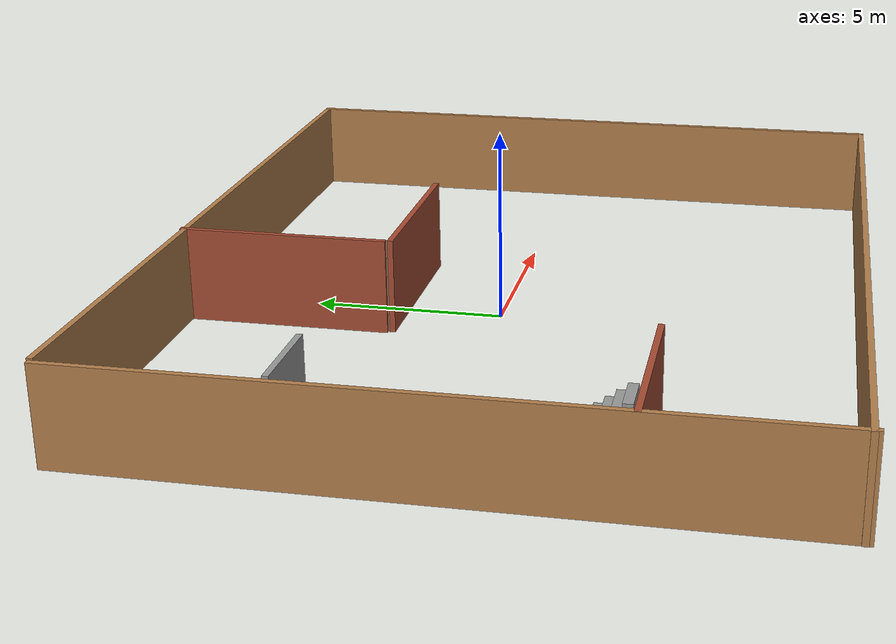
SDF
<?xml version='1.0'?>
<sdf version='1.7'>
  <model name='house'>
    <pose>0.312578 -0.662626 0 0 -0 0</pose>
    <link name='Stairs_0'>
      <visual name='Stairs_0_Visual_0'>
        <pose>-9.78686 -0.646213 0.083333 0 -0 0</pose>
        <geometry>
          <box>
            <size>1 0.233333 0.166667</size>
          </box>
        </geometry>
        <material>
          <script>
            <uri>file://media/materials/scripts/gazebo.material</uri>
            <name>Gazebo/Grey</name>
          </script>
          <ambient>1 1 1 1</ambient>
        </material>
        <meta>
          <layer>0</layer>
        </meta>
      </visual>
      <collision name='Stairs_0_Collision_0'>
        <geometry>
          <box>
            <size>1 0.233333 0.166667</size>
          </box>
        </geometry>
        <pose>-9.78686 -0.646213 0.083333 0 -0 0</pose>
      </collision>
      <visual name='Stairs_0_Visual_1'>
        <pose>-9.78686 -0.879547 0.25 0 -0 0</pose>
        <geometry>
          <box>
            <size>1 0.233333 0.166667</size>
          </box>
        </geometry>
        <material>
          <script>
            <uri>file://media/materials/scripts/gazebo.material</uri>
            <name>Gazebo/Grey</name>
          </script>
          <ambient>1 1 1 1</ambient>
        </material>
        <meta>
          <layer>0</layer>
        </meta>
      </visual>
      <collision name='Stairs_0_Collision_1'>
        <geometry>
          <box>
            <size>1 0.233333 0.166667</size>
          </box>
        </geometry>
        <pose>-9.78686 -0.879547 0.25 0 -0 0</pose>
      </collision>
      <visual name='Stairs_0_Visual_2'>
        <pose>-9.78686 -1.11288 0.416667 0 -0 0</pose>
        <geometry>
          <box>
            <size>1 0.233333 0.166667</size>
          </box>
        </geometry>
        <material>
          <script>
            <uri>file://media/materials/scripts/gazebo.material</uri>
            <name>Gazebo/Grey</name>
          </script>
          <ambient>1 1 1 1</ambient>
        </material>
        <meta>
          <layer>0</layer>
        </meta>
      </visual>
      <collision name='Stairs_0_Collision_2'>
        <geometry>
          <box>
            <size>1 0.233333 0.166667</size>
          </box>
        </geometry>
        <pose>-9.78686 -1.11288 0.416667 0 -0 0</pose>
      </collision>
      <visual name='Stairs_0_Visual_3'>
        <pose>-9.78686 -1.34621 0.583333 0 -0 0</pose>
        <geometry>
          <box>
            <size>1 0.233333 0.166667</size>
          </box>
        </geometry>
        <material>
          <script>
            <uri>file://media/materials/scripts/gazebo.material</uri>
            <name>Gazebo/Grey</name>
          </script>
          <ambient>1 1 1 1</ambient>
        </material>
        <meta>
          <layer>0</layer>
        </meta>
      </visual>
      <collision name='Stairs_0_Collision_3'>
        <geometry>
          <box>
            <size>1 0.233333 0.166667</size>
          </box>
        </geometry>
        <pose>-9.78686 -1.34621 0.583333 0 -0 0</pose>
      </collision>
      <visual name='Stairs_0_Visual_4'>
        <pose>-9.78686 -1.57955 0.75 0 -0 0</pose>
        <geometry>
          <box>
            <size>1 0.233333 0.166667</size>
          </box>
        </geometry>
        <material>
          <script>
            <uri>file://media/materials/scripts/gazebo.material</uri>
            <name>Gazebo/Grey</name>
          </script>
          <ambient>1 1 1 1</ambient>
        </material>
        <meta>
          <layer>0</layer>
        </meta>
      </visual>
      <collision name='Stairs_0_Collision_4'>
        <geometry>
          <box>
            <size>1 0.233333 0.166667</size>
          </box>
        </geometry>
        <pose>-9.78686 -1.57955 0.75 0 -0 0</pose>
      </collision>
      <visual name='Stairs_0_Visual_5'>
        <pose>-9.78686 -1.81288 0.916667 0 -0 0</pose>
        <geometry>
          <box>
            <size>1 0.233333 0.166667</size>
          </box>
        </geometry>
        <material>
          <script>
            <uri>file://media/materials/scripts/gazebo.material</uri>
            <name>Gazebo/Grey</name>
          </script>
          <ambient>1 1 1 1</ambient>
        </material>
        <meta>
          <layer>0</layer>
        </meta>
      </visual>
      <collision name='Stairs_0_Collision_5'>
        <geometry>
          <box>
            <size>1 0.233333 0.166667</size>
          </box>
        </geometry>
        <pose>-9.78686 -1.81288 0.916667 0 -0 0</pose>
      </collision>
      <visual name='Stairs_0_Visual_6'>
        <pose>-9.78686 -2.04621 1.08333 0 -0 0</pose>
        <geometry>
          <box>
            <size>1 0.233333 0.166667</size>
          </box>
        </geometry>
        <material>
          <script>
            <uri>file://media/materials/scripts/gazebo.material</uri>
            <name>Gazebo/Grey</name>
          </script>
          <ambient>1 1 1 1</ambient>
        </material>
        <meta>
          <layer>0</layer>
        </meta>
      </visual>
      <collision name='Stairs_0_Collision_6'>
        <geometry>
          <box>
            <size>1 0.233333 0.166667</size>
          </box>
        </geometry>
        <pose>-9.78686 -2.04621 1.08333 0 -0 0</pose>
      </collision>
      <visual name='Stairs_0_Visual_7'>
        <pose>-9.78686 -2.27955 1.25 0 -0 0</pose>
        <geometry>
          <box>
            <size>1 0.233333 0.166667</size>
          </box>
        </geometry>
        <material>
          <script>
            <uri>file://media/materials/scripts/gazebo.material</uri>
            <name>Gazebo/Grey</name>
          </script>
          <ambient>1 1 1 1</ambient>
        </material>
        <meta>
          <layer>0</layer>
        </meta>
      </visual>
      <collision name='Stairs_0_Collision_7'>
        <geometry>
          <box>
            <size>1 0.233333 0.166667</size>
          </box>
        </geometry>
        <pose>-9.78686 -2.27955 1.25 0 -0 0</pose>
      </collision>
      <visual name='Stairs_0_Visual_8'>
        <pose>-9.78686 -2.51288 1.41667 0 -0 0</pose>
        <geometry>
          <box>
            <size>1 0.233333 0.166667</size>
          </box>
        </geometry>
        <material>
          <script>
            <uri>file://media/materials/scripts/gazebo.material</uri>
            <name>Gazebo/Grey</name>
          </script>
          <ambient>1 1 1 1</ambient>
        </material>
        <meta>
          <layer>0</layer>
        </meta>
      </visual>
      <collision name='Stairs_0_Collision_8'>
        <geometry>
          <box>
            <size>1 0.233333 0.166667</size>
          </box>
        </geometry>
        <pose>-9.78686 -2.51288 1.41667 0 -0 0</pose>
      </collision>
      <visual name='Stairs_0_Visual_9'>
        <pose>-9.78686 -2.74621 1.58333 0 -0 0</pose>
        <geometry>
          <box>
            <size>1 0.233333 0.166667</size>
          </box>
        </geometry>
        <material>
          <script>
            <uri>file://media/materials/scripts/gazebo.material</uri>
            <name>Gazebo/Grey</name>
          </script>
          <ambient>1 1 1 1</ambient>
        </material>
        <meta>
          <layer>0</layer>
        </meta>
      </visual>
      <collision name='Stairs_0_Collision_9'>
        <geometry>
          <box>
            <size>1 0.233333 0.166667</size>
          </box>
        </geometry>
        <pose>-9.78686 -2.74621 1.58333 0 -0 0</pose>
      </collision>
      <visual name='Stairs_0_Visual_10'>
        <pose>-9.78686 -2.97955 1.75 0 -0 0</pose>
        <geometry>
          <box>
            <size>1 0.233333 0.166667</size>
          </box>
        </geometry>
        <material>
          <script>
            <uri>file://media/materials/scripts/gazebo.material</uri>
            <name>Gazebo/Grey</name>
          </script>
          <ambient>1 1 1 1</ambient>
        </material>
        <meta>
          <layer>0</layer>
        </meta>
      </visual>
      <collision name='Stairs_0_Collision_10'>
        <geometry>
          <box>
            <size>1 0.233333 0.166667</size>
          </box>
        </geometry>
        <pose>-9.78686 -2.97955 1.75 0 -0 0</pose>
      </collision>
      <visual name='Stairs_0_Visual_11'>
        <pose>-9.78686 -3.21288 1.91667 0 -0 0</pose>
        <geometry>
          <box>
            <size>1 0.233333 0.166667</size>
          </box>
        </geometry>
        <material>
          <script>
            <uri>file://media/materials/scripts/gazebo.material</uri>
            <name>Gazebo/Grey</name>
          </script>
          <ambient>1 1 1 1</ambient>
        </material>
        <meta>
          <layer>0</layer>
        </meta>
      </visual>
      <collision name='Stairs_0_Collision_11'>
        <geometry>
          <box>
            <size>1 0.233333 0.166667</size>
          </box>
        </geometry>
        <pose>-9.78686 -3.21288 1.91667 0 -0 0</pose>
      </collision>
      <visual name='Stairs_0_Visual_12'>
        <pose>-9.78686 -3.44621 2.08333 0 -0 0</pose>
        <geometry>
          <box>
            <size>1 0.233333 0.166667</size>
          </box>
        </geometry>
        <material>
          <script>
            <uri>file://media/materials/scripts/gazebo.material</uri>
            <name>Gazebo/Grey</name>
          </script>
          <ambient>1 1 1 1</ambient>
        </material>
        <meta>
          <layer>0</layer>
        </meta>
      </visual>
      <collision name='Stairs_0_Collision_12'>
        <geometry>
          <box>
            <size>1 0.233333 0.166667</size>
          </box>
        </geometry>
        <pose>-9.78686 -3.44621 2.08333 0 -0 0</pose>
      </collision>
      <visual name='Stairs_0_Visual_13'>
        <pose>-9.78686 -3.67955 2.25 0 -0 0</pose>
        <geometry>
          <box>
            <size>1 0.233333 0.166667</size>
          </box>
        </geometry>
        <material>
          <script>
            <uri>file://media/materials/scripts/gazebo.material</uri>
            <name>Gazebo/Grey</name>
          </script>
          <ambient>1 1 1 1</ambient>
        </material>
        <meta>
          <layer>0</layer>
        </meta>
      </visual>
      <collision name='Stairs_0_Collision_13'>
        <geometry>
          <box>
            <size>1 0.233333 0.166667</size>
          </box>
        </geometry>
        <pose>-9.78686 -3.67955 2.25 0 -0 0</pose>
      </collision>
      <visual name='Stairs_0_Visual_14'>
        <pose>-9.78686 -3.91288 2.41667 0 -0 0</pose>
        <geometry>
          <box>
            <size>1 0.233333 0.166667</size>
          </box>
        </geometry>
        <material>
          <script>
            <uri>file://media/materials/scripts/gazebo.material</uri>
            <name>Gazebo/Grey</name>
          </script>
          <ambient>1 1 1 1</ambient>
        </material>
        <meta>
          <layer>0</layer>
        </meta>
      </visual>
      <collision name='Stairs_0_Collision_14'>
        <geometry>
          <box>
            <size>1 0.233333 0.166667</size>
          </box>
        </geometry>
        <pose>-9.78686 -3.91288 2.41667 0 -0 0</pose>
      </collision>
    </link>
    <link name='Wall_11'>
      <collision name='Wall_11_Collision'>
        <geometry>
          <box>
            <size>5.5 0.15 2.5</size>
          </box>
        </geometry>
        <pose>0 0 1.25 0 -0 0</pose>
      </collision>
      <visual name='Wall_11_Visual'>
        <pose>0 0 1.25 0 -0 0</pose>
        <geometry>
          <box>
            <size>5.5 0.15 2.5</size>
          </box>
        </geometry>
        <material>
          <script>
            <uri>file://media/materials/scripts/gazebo.material</uri>
            <name>Gazebo/Bricks</name>
          </script>
          <ambient>1 1 1 1</ambient>
        </material>
        <meta>
          <layer>0</layer>
        </meta>
      </visual>
      <pose>-1.8778 6.07137 0 0 -0 1.5708</pose>
    </link>
    <link name='Wall_13'>
      <collision name='Wall_13_Collision'>
        <geometry>
          <box>
            <size>2.25 0.15 2.5</size>
          </box>
        </geometry>
        <pose>0 0 1.25 0 -0 0</pose>
      </collision>
      <visual name='Wall_13_Visual'>
        <pose>0 0 1.25 0 -0 0</pose>
        <geometry>
          <box>
            <size>2.25 0.15 2.5</size>
          </box>
        </geometry>
        <material>
          <script>
            <uri>file://media/materials/scripts/gazebo.material</uri>
            <name>Gazebo/Grey</name>
          </script>
          <ambient>1 1 1 1</ambient>
        </material>
        <meta>
          <layer>0</layer>
        </meta>
      </visual>
      <pose>-9.20852 3.53594 0 0 -0 3.14159</pose>
    </link>
    <link name='Wall_16'>
      <collision name='Wall_16_Collision'>
        <geometry>
          <box>
            <size>5 0.15 2.5</size>
          </box>
        </geometry>
        <pose>0 0 1.25 0 -0 0</pose>
      </collision>
      <visual name='Wall_16_Visual'>
        <pose>0 0 1.25 0 -0 0</pose>
        <geometry>
          <box>
            <size>5 0.15 2.5</size>
          </box>
        </geometry>
        <material>
          <script>
            <uri>file://media/materials/scripts/gazebo.material</uri>
            <name>Gazebo/Bricks</name>
          </script>
          <ambient>1 1 1 1</ambient>
        </material>
        <meta>
          <layer>0</layer>
        </meta>
      </visual>
      <pose>0.628738 3.21028 0 0 -0 3.14159</pose>
    </link>
    <link name='Wall_18'>
      <collision name='Wall_18_Collision'>
        <geometry>
          <box>
            <size>4.5 0.15 2.5</size>
          </box>
        </geometry>
        <pose>0 0 1.25 0 -0 0</pose>
      </collision>
      <visual name='Wall_18_Visual'>
        <pose>0 0 1.25 0 -0 0</pose>
        <geometry>
          <box>
            <size>4.5 0.15 2.5</size>
          </box>
        </geometry>
        <material>
          <script>
            <uri>file://media/materials/scripts/gazebo.material</uri>
            <name>Gazebo/Bricks</name>
          </script>
          <ambient>1 1 1 1</ambient>
        </material>
        <meta>
          <layer>0</layer>
        </meta>
      </visual>
      <pose>-8.333 -4.1405 0 0 -0 3.14159</pose>
    </link>
    <link name='Wall_2'>
      <collision name='Wall_2_Collision'>
        <geometry>
          <box>
            <size>17.5 0.15 2.5</size>
          </box>
        </geometry>
        <pose>0 0 1.25 0 -0 0</pose>
      </collision>
      <visual name='Wall_2_Visual'>
        <pose>0 0 1.25 0 -0 0</pose>
        <geometry>
          <box>
            <size>17.5 0.15 2.5</size>
          </box>
        </geometry>
        <material>
          <script>
            <uri>file://media/materials/scripts/gazebo.material</uri>
            <name>Gazebo/Wood</name>
          </script>
          <ambient>1 1 1 1</ambient>
        </material>
        <meta>
          <layer>0</layer>
        </meta>
      </visual>
      <pose>10.55 0.016382 0 0 -0 -1.5708</pose>
    </link>
    <link name='Wall_4'>
      <collision name='Wall_4_Collision'>
        <geometry>
          <box>
            <size>21 0.15 2.5</size>
          </box>
        </geometry>
        <pose>0 0 1.25 0 -0 0</pose>
      </collision>
      <visual name='Wall_4_Visual'>
        <pose>0 0 1.25 0 -0 0</pose>
        <geometry>
          <box>
            <size>21 0.15 2.5</size>
          </box>
        </geometry>
        <material>
          <script>
            <uri>file://media/materials/scripts/gazebo.material</uri>
            <name>Gazebo/Wood</name>
          </script>
          <ambient>1 1 1 1</ambient>
        </material>
        <meta>
          <layer>0</layer>
        </meta>
      </visual>
      <pose>0.125 8.69138 0 0 -0 0</pose>
    </link>
    <link name='Wall_7'>
      <collision name='Wall_7_Collision'>
        <geometry>
          <box>
            <size>17.5 0.15 2.5</size>
          </box>
        </geometry>
        <pose>0 0 1.25 0 -0 0</pose>
      </collision>
      <visual name='Wall_7_Visual'>
        <pose>0 0 1.25 0 -0 0</pose>
        <geometry>
          <box>
            <size>17.5 0.15 2.5</size>
          </box>
        </geometry>
        <material>
          <script>
            <uri>file://media/materials/scripts/gazebo.material</uri>
            <name>Gazebo/Wood</name>
          </script>
          <ambient>1 1 1 1</ambient>
        </material>
        <meta>
          <layer>0</layer>
        </meta>
      </visual>
      <pose>-10.5312 -0.07137 0 0 -0 1.5708</pose>
    </link>
    <link name='Wall_9'>
      <collision name='Wall_9_Collision'>
        <geometry>
          <box>
            <size>21.25 0.15 2.5</size>
          </box>
        </geometry>
        <pose>0 0 1.25 0 -0 0</pose>
      </collision>
      <visual name='Wall_9_Visual'>
        <pose>0 0 1.25 0 -0 0</pose>
        <geometry>
          <box>
            <size>21.25 0.15 2.5</size>
          </box>
        </geometry>
        <material>
          <script>
            <uri>file://media/materials/scripts/gazebo.material</uri>
            <name>Gazebo/Wood</name>
          </script>
          <ambient>1 1 1 1</ambient>
        </material>
        <meta>
          <layer>0</layer>
        </meta>
      </visual>
      <pose>-0 -8.65862 0 0 -0 3.14159</pose>
    </link>
    <static>1</static>
  </model>
</sdf>
